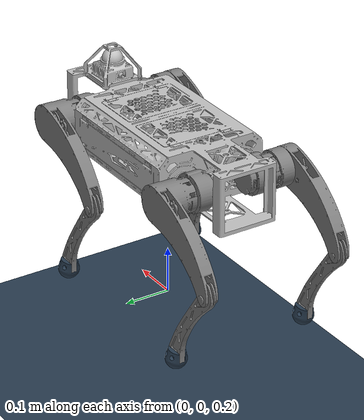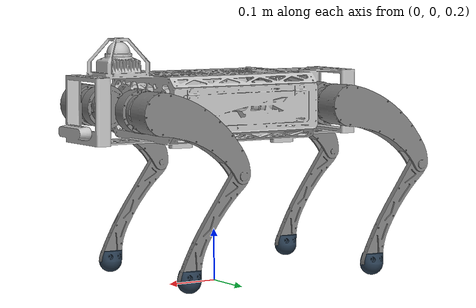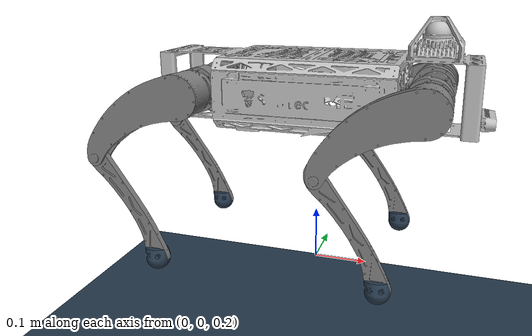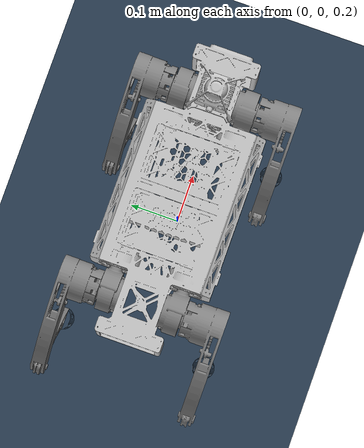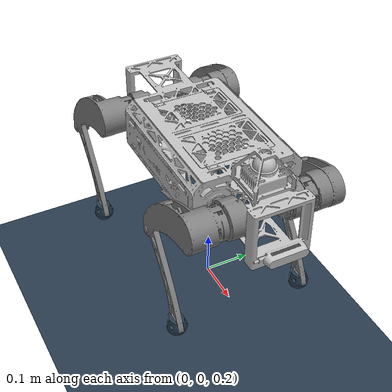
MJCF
<mujoco model="Legged_Robot_fixed">
  <compiler angle="radian" autolimits="true" eulerseq="zyx"/>
  <option  gravity='0 0 -9.81'>
    <flag frictionloss="enable"/>
  </option>
  <size njmax="500" nconmax="100" />

  <default>
    <joint limited='true'/>
    <motor ctrllimited='true'/>
    <geom condim='1' contype="1" friction='0.6 0.2 0.2'/>
    <default class='leg_joint_param'>
      <joint damping="0.5" frictionloss="0.01" armature="0.01"/>
    </default>
    <default class="foot_collision">
      <geom type="sphere" size="0.02" condim="6" friction="10.0 0.05 0.01"/>
    </default>
  </default>

  <asset>
    <hfield name="terrain" nrow="100" ncol="100" size="50 50 0.5 0.1"/>
    <mesh name="base_link" file="meshes/base_link.STL"/>
    <mesh name="LF_HipA_link" file="meshes/LF_HipA_link.STL"/>
    <mesh name="LF_HipF_link" file="meshes/LF_HipF_link.STL"/>
    <mesh name="LF_Knee_link" file="meshes/LF_Knee_link.STL"/>
    <mesh name="LF_Foot_link" file="meshes/LF_Foot_link.STL"/>
    <mesh name="LR_HipA_link" file="meshes/LR_HipA_link.STL"/>
    <mesh name="LR_HipF_link" file="meshes/LR_HipF_link.STL"/>
    <mesh name="LR_Knee_link" file="meshes/LR_Knee_link.STL"/>
    <mesh name="LR_Foot_link" file="meshes/LR_Foot_link.STL"/>
    <mesh name="RF_HipA_link" file="meshes/RF_HipA_link.STL"/>
    <mesh name="RF_HipF_link" file="meshes/RF_HipF_link.STL"/>
    <mesh name="RF_Knee_link" file="meshes/RF_Knee_link.STL"/>
    <mesh name="RF_Foot_link" file="meshes/RF_Foot_link.STL"/>
    <mesh name="RR_HipA_link" file="meshes/RR_HipA_link.STL"/>
    <mesh name="RR_HipF_link" file="meshes/RR_HipF_link.STL"/>
    <mesh name="RR_Knee_link" file="meshes/RR_Knee_link.STL"/>
    <mesh name="RR_Foot_link" file="meshes/RR_Foot_link.STL"/>

    <material name="matplane" reflectance="0.3" texture="texplane" texrepeat="1 1" texuniform="true"/>
    <texture name="texplane" type="2d" builtin="checker" rgb1=".2 .3 .4" rgb2=".1 0.15 0.2" width="512" height="512"/>
  </asset>

  <worldbody>
    <light directional="true" diffuse=".4 .4 .4" pos="0 0 5.0" dir="0 0 -1"/>
    <geom name="floor" type="plane" size="50 50 0.1" pos="0 0 0" material="matplane" condim="3" friction="1.0 0.2 0.2" />

    <body name="base_link" pos="0 0 0.48">
      <inertial pos="0.003073 -0.000011 0.058211" mass="5.2764368" fullinertia="0.0328421 0.1037622 0.1165384 0.0000334 -0.0072546 0.0000334"/>

      <site name='imu' size='0.01' pos='0 0 0'/>
      <geom type="mesh" mesh="base_link" rgba="0.75 0.75 0.75 1" contype="0" conaffinity="0" group="1"/>
      <geom type="mesh" mesh="base_link" rgba="0.75 0.75 0.75 1" contype="0" conaffinity="0" group="1"/>

      <body name="LF_HipA_link" pos="0.16 0.0675 0.063" quat="0.5 0.5 0.5 0.5">
        <inertial pos="0.002621 0.000052 0.046852" mass="0.452382" fullinertia="0.0005587 0.000347 0.000309 0.0000003 -0.0000007 -0.0000001"/>
        <joint name="LF_HipA_joint" axis="0 0 1" range="-0.7853982 0.7853982" class="leg_joint_param"/>
        <geom type="mesh" mesh="LF_HipA_link"/>

        <body name="LF_HipF_link" pos="0.018 0 0.048" quat="0.707 0 0.707 0">
          <inertial pos="0.033261 -0.016881 0.050217" mass="0.779164" fullinertia="0.0015974 0.0032684 0.0043304 0.0015051 -0.0004429 0.0002247"/>
          <joint name="LF_HipF_joint" axis="0 0 1" range="-1.2217658 0.8726683" class="leg_joint_param"/>
          <geom type="mesh" mesh="LF_HipF_link"/>

          <body name="LF_Knee_link" pos="0.1707 -0.1222 0.05">
            <inertial pos="-0.055107 -0.080197 0.016515" mass="0.121558" fullinertia="0.0005493 0.0002237 0.0007696 -0.0003334 -0.0000001 -0.0000002"/>
            <joint name="LF_Knee_joint" axis="0 0 1" range="-1.2217299 0.69813" class="leg_joint_param"/>
            <geom type="mesh" mesh="LF_Knee_link"/>
            <site name="LF_foot_site" pos="-0.11 -0.19 0.016" size="0.01"/>

            <geom name="LF_foot_visual" type="mesh" mesh="LF_Foot_link" pos="-0.11 -0.19 0.016" quat="0 0 0.707 0.707"
                  contype="0" conaffinity="0" group="1" material="matplane"/>
            <geom name="LF_foot_collision" class="foot_collision" pos="-0.11 -0.19 0.016" rgba="0 0 0 0"/>
          </body>
        </body>
      </body>

      <body name="LR_HipA_link" pos="-0.16 0.0675 0.063" quat="0.5 0.5 -0.5 -0.5">
        <inertial pos="-0.002621 -0.000052 0.046852" mass="0.452382" fullinertia="0.0005587 0.000347 0.000309 0.0000003 0.0000007 0.0000001"/>
        <joint name="LR_HipA_joint" axis="0 0 1" range="-0.7853982 0.7853982" class="leg_joint_param"/>
        <geom type="mesh" mesh="LR_HipA_link"/>

        <body name="LR_HipF_link" pos="-0.018 0 0.048" quat="0.707 0 -0.707 0">
          <inertial pos="0.03326 -0.016881 0.050217" mass="0.779164" fullinertia="0.0015974 0.0032684 0.0043304 0.0015051 -0.0004429 0.0002247"/>
          <joint name="LR_HipF_joint" axis="0 0 1" range="-1.2217305 0.8726683" class="leg_joint_param"/>
          <geom type="mesh" mesh="LR_HipF_link"/>

          <body name="LR_Knee_link" pos="0.1707 -0.1222 0.05">
            <inertial pos="-0.055107 -0.080197 0.016515" mass="0.121558" fullinertia="0.0005493 0.0002237 0.0007696 -0.0003334 -0.0000001 -0.0000002"/>
            <joint name="LR_Knee_joint" axis="0 0 1" range="-1.2217299 0.69813" class="leg_joint_param"/>
            <geom type="mesh" mesh="LR_Knee_link"/>
            <site name="LR_foot_site" pos="-0.11 -0.19 0.016" size="0.01"/>

            <geom name="LR_foot_visual" type="mesh" mesh="LR_Foot_link" pos="-0.11 -0.19 0.016" quat="0 0 -0.707 -0.707"
                  contype="0" conaffinity="0" group="1" material="matplane"/>
            <geom name="LR_foot_collision" class="foot_collision" pos="-0.11 -0.19 0.016" rgba="0 0 0 0"/>
          </body>
        </body>
      </body>

      <body name="RF_HipA_link" pos="0.16 -0.0675 0.063" quat="0.5 0.5 0.5 0.5">
        <inertial pos="-0.002621 -0.000052 0.046852" mass="0.452382" fullinertia="0.0005587 0.000347 0.000309 0.0000003 0.0000007 0.0000001"/>
        <joint name="RF_HipA_joint" axis="0 0 1" range="-0.7853982 0.7853982" class="leg_joint_param"/>
        <geom type="mesh" mesh="RF_HipA_link"/>

        <body name="RF_HipF_link" pos="-0.018 0 0.048" quat="0.707 0 -0.707 0">
          <inertial pos="-0.033247 -0.016939 0.050217" mass="0.779164" fullinertia="0.0015958 0.0032692 0.0043296 -0.0015036 0.0004432 0.0002236"/>
          <joint name="RF_HipF_joint" axis="0 0 1" range="-0.8726999 1.2217342" class="leg_joint_param"/>
          <geom type="mesh" mesh="RF_HipF_link"/>

          <body name="RF_Knee_link" pos="-0.1707 -0.1222 0.05">
            <inertial pos="0.055107 -0.080197 0.016485" mass="0.121558" fullinertia="0.0005493 0.0002237 0.0007696 0.0003334 -0.0000001 0.0000002"/>
            <joint name="RF_Knee_joint" axis="0 0 1" range="-0.6981312 1.2217287" class="leg_joint_param"/>
            <geom type="mesh" mesh="RF_Knee_link"/>
            <site name="RF_foot_site" pos="0.11 -0.19 0.016" size="0.01"/>

            <geom name="RF_foot_visual" type="mesh" mesh="RF_Foot_link" pos="0.11 -0.19 0.016" quat="0.707 -0.707 0 0"
                  contype="0" conaffinity="0" group="1" material="matplane"/>
            <geom name="RF_foot_collision" class="foot_collision" pos="0.11 -0.19 0.016" rgba="0 0 0 0"/>
          </body>
        </body>
      </body>

      <body name="RR_HipA_link" pos="-0.16 -0.0675 0.063" quat="0.5 0.5 -0.5 -0.5">
        <inertial pos="0.002621 0.000052 0.046852" mass="0.452382" fullinertia="0.0005587 0.000347 0.000309 0.0000003 -0.0000007 -0.0000001"/>
        <joint name="RR_HipA_joint" axis="0 0 1" range="-0.7853982 0.7853982" class="leg_joint_param"/>
        <geom type="mesh" mesh="RR_HipA_link"/>

        <body name="RR_HipF_link" pos="0.018 0 0.048" quat="0.707 0 0.707 0">
          <inertial pos="-0.033246 -0.01694 0.050217" mass="0.779164" fullinertia="0.0015958 0.0032692 0.0043296 -0.0015036 0.0004432 0.0002236"/>
          <joint name="RR_HipF_joint" axis="0 0 1" range="-0.8726999 1.2217305" class="leg_joint_param"/>
          <geom type="mesh" mesh="RR_HipF_link"/>

          <body name="RR_Knee_link" pos="-0.1707 -0.1222 0.05">
            <inertial pos="0.055107 -0.080197 0.016485" mass="0.121558" fullinertia="0.0005493 0.0002237 0.0007696 0.0003334 -0.0000001 0.0000002"/>
            <joint name="RR_Knee_joint" axis="0 0 1" range="-0.6981312 1.2217287" class="leg_joint_param"/>
            <geom type="mesh" mesh="RR_Knee_link"/>
            <site name="RR_foot_site" pos="0.11 -0.19 0.016" size="0.01"/>

            <geom name="RR_foot_visual" type="mesh" mesh="RR_Foot_link" pos="0.11 -0.19 0.016" quat="0.707 -0.707 0 0"
                  contype="0" conaffinity="0" group="1" material="matplane"/>
            <geom name="RR_foot_collision" class="foot_collision" pos="0.11 -0.19 0.016" rgba="0 0 0 0"/>
          </body>
        </body>
      </body>
    </body>
  </worldbody>

  <actuator>
    <motor name="LF_HipA" joint="LF_HipA_joint" gear="1" ctrllimited="true" ctrlrange="-17 17"/>
    <motor name="LF_HipF" joint="LF_HipF_joint" gear="1" ctrllimited="true" ctrlrange="-17 17"/>
    <motor name="LF_Knee" joint="LF_Knee_joint" gear="1" ctrllimited="true" ctrlrange="-25 25"/>

    <motor name="LR_HipA" joint="LR_HipA_joint" gear="1" ctrllimited="true" ctrlrange="-17 17"/>
    <motor name="LR_HipF" joint="LR_HipF_joint" gear="1" ctrllimited="true" ctrlrange="-17 17"/>
    <motor name="LR_Knee" joint="LR_Knee_joint" gear="1" ctrllimited="true" ctrlrange="-25 25"/>

    <motor name="RF_HipA" joint="RF_HipA_joint" gear="1" ctrllimited="true" ctrlrange="-17 17"/>
    <motor name="RF_HipF" joint="RF_HipF_joint" gear="1" ctrllimited="true" ctrlrange="-17 17"/>
    <motor name="RF_Knee" joint="RF_Knee_joint" gear="1" ctrllimited="true" ctrlrange="-25 25"/>

    <motor name="RR_HipA" joint="RR_HipA_joint" gear="1" ctrllimited="true" ctrlrange="-17 17"/>
    <motor name="RR_HipF" joint="RR_HipF_joint" gear="1" ctrllimited="true" ctrlrange="-17 17"/>
    <motor name="RR_Knee" joint="RR_Knee_joint" gear="1" ctrllimited="true" ctrlrange="-25 25"/>
  </actuator>

  <sensor>
    <framequat name="orientation" objtype="site" objname="imu" noise="0.001"/>
    <framepos name="position" objtype="site" objname="imu" noise="0.001"/>
    <gyro name="angular-velocity" site="imu" noise="0.005"/>
    <velocimeter name="linear-velocity" site="imu" noise="0.001"/>
    <accelerometer name="linear-acceleration" site="imu" noise="0.005"/>
    <touch name="LF_touch" site="LF_foot_site"/>
    <touch name="LR_touch" site="LR_foot_site"/>
    <touch name="RF_touch" site="RF_foot_site"/>
    <touch name="RR_touch" site="RR_foot_site"/>
  </sensor>
</mujoco>
